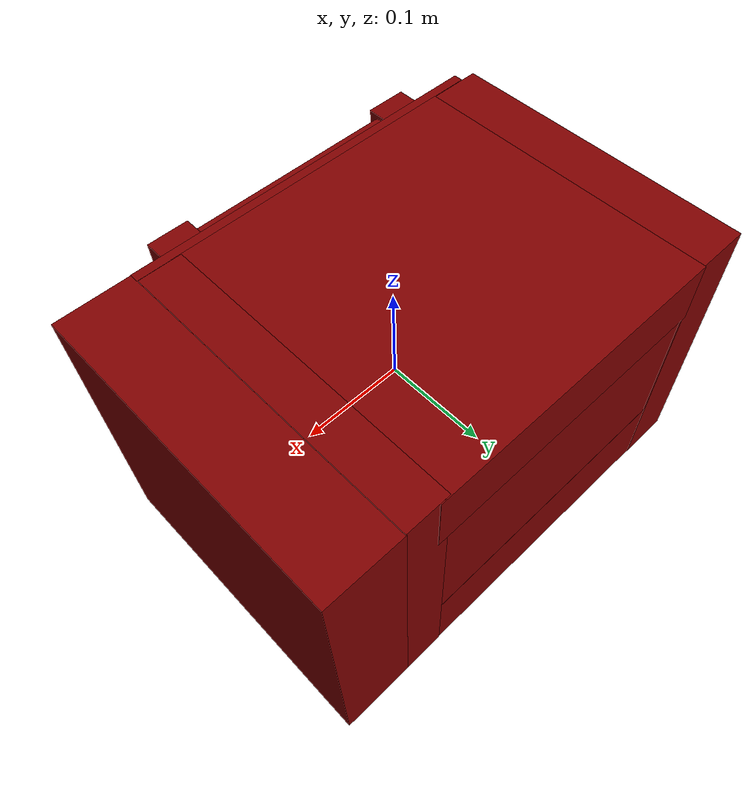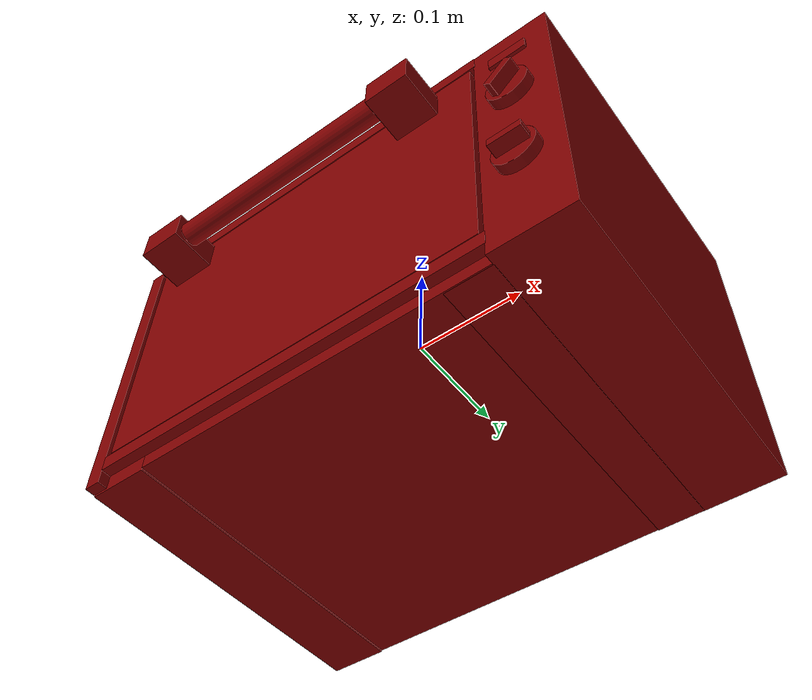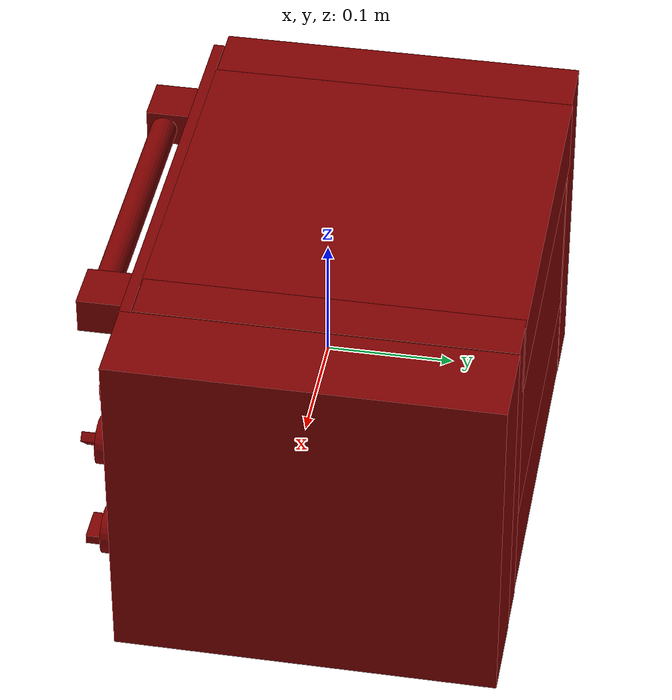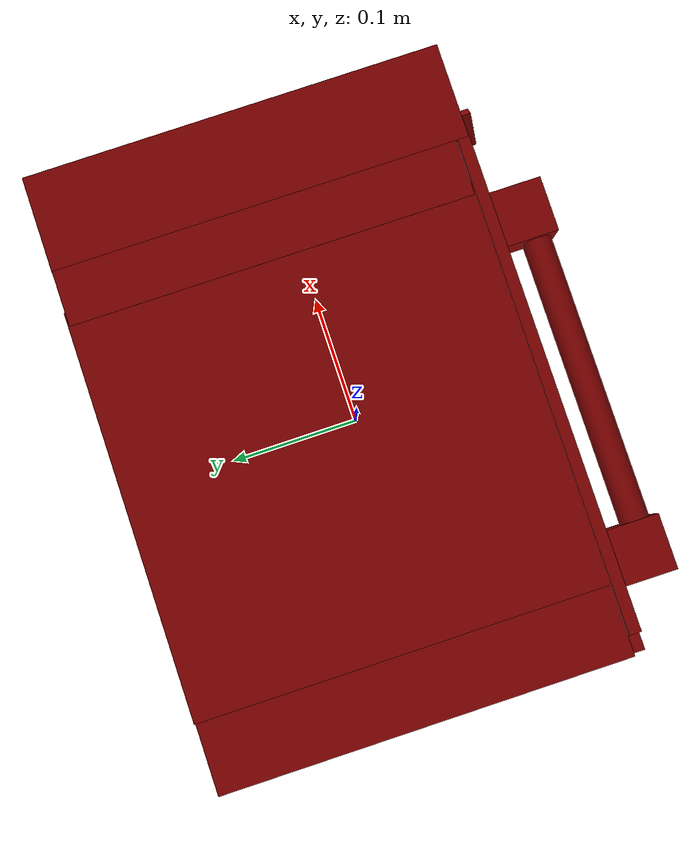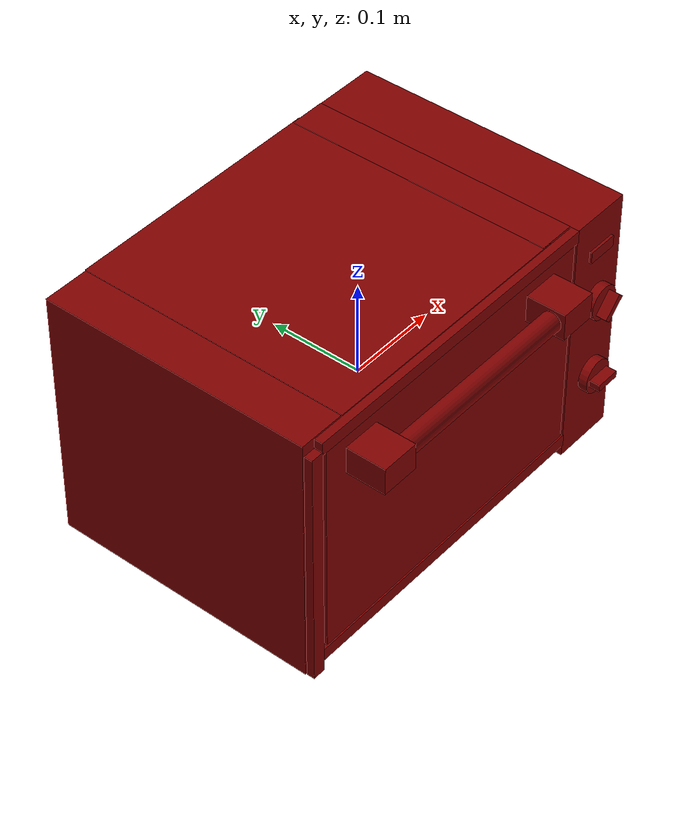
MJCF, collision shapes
<?xml version='1.0' encoding='UTF-8'?>
<mujoco model="model">
  <compiler angle="radian"/>
  <asset>
    <mesh file="visuals/Body001.obj" name="Body001_vis"/>
    <mesh file="visuals/Button001.obj" name="Button001_vis"/>
    <mesh file="visuals/Container001.obj" name="Container001_vis"/>
    <mesh file="visuals/Door001.obj" name="Door001_vis"/>
    <mesh file="visuals/Door001_Clear.obj" name="Door001_Clear_vis"/>
    <mesh file="visuals/Knob001.obj" name="Knob001_vis"/>
    <mesh file="visuals/Knob002.obj" name="Knob002_vis"/>
    <texture file="visuals/T_BC001.png" name="Body001_material" type="2d"/>
    <material name="Body001_material" rgba="1 1 1 1.0" texture="Body001_material" shininess="0.4472135901451111" specular="0.7"/>
    <texture file="visuals/T_BC001.png" name="Button001_material" type="2d"/>
    <material name="Button001_material" rgba="1 1 1 1.0" texture="Button001_material" shininess="0.4472135901451111" specular="0.3103448502657381"/>
    <texture file="visuals/T_BC001.png" name="Container001_material" type="2d"/>
    <material name="Container001_material" rgba="1 1 1 1.0" texture="Container001_material" shininess="0.4472135901451111" specular="0.3103448502657381"/>
    <texture file="visuals/T_BC001.png" name="Door001_material" type="2d"/>
    <material name="Door001_material" rgba="1 1 1 1.0" texture="Door001_material" shininess="0.4472135901451111" specular="0.7"/>
    <texture file="visuals/T_BC001.png" name="Door001_Clear_material" type="2d"/>
    <material name="Door001_Clear_material" rgba="1 1 1 0.800000011920929" texture="Door001_Clear_material" shininess="0.5" specular="0.3103448502657381"/>
    <texture file="visuals/T_BC001.png" name="Knob001_material" type="2d"/>
    <material name="Knob001_material" rgba="1 1 1 1.0" texture="Knob001_material" shininess="0.4472135901451111" specular="0.3103448502657381"/>
    <texture file="visuals/T_BC001.png" name="Knob002_material" type="2d"/>
    <material name="Knob002_material" rgba="1 1 1 1.0" texture="Knob002_material" shininess="0.4472135901451111" specular="0.3103448502657381"/>
  </asset>
  <default>
    <default class="visual">
      <geom conaffinity="0" contype="0" group="1" type="mesh"/>
    </default>
    <default class="collision">
      <geom group="0" rgba="0.5 0 0 0.5"/>
    </default>
    <default class="spawn">
      <geom group="0" rgba="1 1 1 0.5" contype="0" conaffinity="0"/>
      <site group="0" rgba="1 1 1 0.5"/>
    </default>
    <default class="region">
      <geom group="1" conaffinity="0" contype="0" rgba="0 1 0 0"/>
    </default>
  </default>
  <worldbody>
    <body>
      <body name="object">
        <geom mesh="Body001_vis" type="mesh" solimp="0.998 0.998 0.001" solref="0.001 1" density="100" friction="0.95 0.3 0.1" class="visual" material="Body001_material"/>
        <geom class="collision" type="box" pos="-0.1932327300310135 0.023562701418995857 -0.0002324962115380913" size="0.025627490133047104 0.14489032328128815 0.13805247843265533" quat="1.0 0.0 0.0 0.0"/>
        <geom class="collision" type="box" pos="0.18368476629257202 0.019207939505577087 -0.00012853697990067303" size="0.03454463183879852 0.1497284322977066 0.13750699162483215" quat="1.0 0.0 0.0 0.0"/>
        <geom class="collision" type="box" pos="-0.02491343580186367 0.023717664182186127 0.10771629959344864" size="0.14444921910762787 0.14566195011138916 0.03040163591504097" quat="1.0 0.0 0.0 0.0"/>
        <geom class="collision" type="box" pos="0.0003365774464327842 0.023008903488516808 -0.0987321212887764" size="0.1671508103609085 0.1451796144247055 0.03858915716409683" quat="1.0 0.0 0.0 0.0"/>
        <geom class="collision" type="box" pos="-0.007290201261639595 0.12078098952770233 0.026276038959622383" size="0.15798072516918182 0.047216691076755524 0.10450322926044464" quat="1.0 0.0 0.0 0.0"/>
        <geom class="collision" type="box" pos="0.12975217401981354 0.02365814335644245 0.0002771170693449676" size="0.019920168444514275 0.14489124715328217 0.13800044357776642" quat="1.0 0.0 0.0 0.0"/>
        <geom class="collision" type="box" pos="-0.21137258410453796 -0.12661521136760712 -0.00518137589097023" size="0.006847952026873827 0.0043335664086043835 0.13252614438533783" quat="1.0 0.0 0.0 0.0"/>
        <geom class="collision" type="box" pos="-0.027426209300756454 -0.1266152262687683 0.13058575987815857" size="0.17745929956436157 0.004333584103733301 0.006848010700196028" quat="1.0 0.0 0.0 0.0"/>
        <geom class="collision" type="box" pos="-0.027426209300756454 -0.1266152262687683 -0.1185009628534317" size="0.17745956778526306 0.004333584103733301 0.006848015822470188" quat="1.0 0.0 0.0 0.0"/>
        <geom class="collision" type="box" pos="-0.1652856320142746 -0.029180819168686867 0.02524438686668873" size="0.0031693163327872753 0.08165861666202545 0.0036857156082987785" quat="1.0 0.0 0.0 0.0"/>
        <geom class="collision" type="box" pos="-0.1652856320142746 -0.029180819168686867 -0.0014495676150545478" size="0.0031693163327872753 0.08165861666202545 0.0024835134390741587" quat="1.0 0.0 0.0 0.0"/>
        <geom class="collision" type="box" pos="-0.1652856320142746 -0.029180819168686867 -0.03261305391788483" size="0.0031693163327872753 0.08165861666202545 0.003685720730572939" quat="1.0 0.0 0.0 0.0"/>
        <geom class="collision" type="box" pos="0.10883291065692902 -0.029180819168686867 0.02524438686668873" size="0.0031693163327872753 0.08165861666202545 0.0036857235245406628" quat="1.0 0.0 0.0 0.0"/>
        <geom class="collision" type="box" pos="0.10883291065692902 -0.029180819168686867 -0.0019221227848902345" size="0.0031693163327872753 0.08165861666202545 0.002483517164364457" quat="1.0 0.0 0.0 0.0"/>
        <geom class="collision" type="box" pos="0.10883291065692902 -0.029180819168686867 -0.03261305391788483" size="0.0031693163327872753 0.08165861666202545 0.003685728646814823" quat="1.0 0.0 0.0 0.0"/>
        <body name="Button001">
          <joint axis="0.0 1.0 0.0" pos="0.18294595181941986 -0.13352136313915253 0.09825830161571503" limited="true" name="Button001_joint" range="0.0 0.003" type="slide" damping="1" frictionloss="1" armature=".01" stiffness="0.05"/>
          <geom mesh="Button001_vis" type="mesh" solimp="0.998 0.998 0.001" solref="0.001 1" density="100" friction="0.95 0.3 0.1" class="visual" material="Button001_material"/>
          <geom class="collision" type="box" pos="0.18284517526626587 -0.13477708399295807 0.09826550632715225" size="0.016775285825133324 0.0013419415336102247 0.006294476334005594" quat="1.0 0.0 0.0 0.0"/>
        </body>
        <body name="Container001">
          <joint axis="0.0 -1.0 0.0" pos="-0.028300438076257706 -0.029593314975500107 0.007739551365375519" limited="true" name="Container001_joint" range="0.0 0.3" type="slide" damping="1" frictionloss="1" armature=".01" stiffness="0.05"/>
          <geom mesh="Container001_vis" type="mesh" solimp="0.998 0.998 0.001" solref="0.001 1" density="100" friction="0.95 0.3 0.1" class="visual" material="Container001_material"/>
          <geom class="collision" type="box" pos="-0.029132431373000145 -0.02918081544339657 0.005697024520486593" size="0.13742515444755554 0.08027005195617676 0.003454453544691205" quat="1.0 0.0 0.0 0.0"/>
        </body>
        <body name="Door001">
          <joint axis="1.0 0.0 0.0" pos="-0.028417732566595078 -0.13098841905593872 -0.10996166616678238" limited="true" name="Door001_joint" range="0.0 1.5707963267948966" type="hinge" damping="1" frictionloss="1" armature=".01" stiffness="0.5" springref="-1"/>
          <geom mesh="Door001_vis" type="mesh" solimp="0.998 0.998 0.001" solref="0.001 1" density="100" friction="0.95 0.3 0.1" class="visual" material="Door001_material"/>
          <geom class="collision" type="box" pos="-0.027483291923999786 -0.12640777230262756 0.006602500565350056" size="0.17245088517665863 0.0040414961986243725 0.11639589071273804" quat="1.0 0.0 0.0 0.0"/>
          <geom class="collision" type="box" pos="-0.1559285819530487 -0.15252259373664856 0.09821559488773346" size="0.020086579024791718 0.0209808386862278 0.014291373081505299" quat="1.0 0.0 0.0 0.0"/>
          <geom class="collision" type="box" pos="0.09332048892974854 -0.15252259373664856 0.09821559488773346" size="0.020086579024791718 0.020980851724743843 0.014291389845311642" quat="1.0 0.0 0.0 0.0"/>
          <geom class="collision" type="cylinder" pos="-0.02982192300260067 -0.1590261459350586 0.09833655506372452" size="0.010604559443891048 0.10777267813682556" quat="0.7071068286895752 -0.0 0.7071067690849304 0.0"/>
          <body name="Door001_Clear">
            <geom mesh="Door001_Clear_vis" type="mesh" solimp="0.998 0.998 0.001" solref="0.001 1" density="100" friction="0.95 0.3 0.1" class="visual" material="Door001_Clear_material"/>
            <geom class="collision" type="box" pos="-0.027810823172330856 -0.12754644453525543 0.008148572407662868" size="0.14387357234954834 0.0022440655156970024 0.07341540604829788" quat="1.0 0.0 0.0 0.0"/>
          </body>
        </body>
        <body name="Knob001">
          <joint axis="0.0 1.0 0.0" pos="0.18314242362976074 -0.13682837784290314 0.038146428763866425" limited="true" name="Knob001_joint" range="0.0 5.497787143782138" type="hinge" damping="0.05" armature="0.001"/>
          <geom mesh="Knob001_vis" type="mesh" solimp="0.998 0.998 0.001" solref="0.001 1" density="100" friction="0.95 0.3 0.1" class="visual" material="Knob001_material"/>
          <geom class="collision" type="cylinder" pos="0.18312975764274597 -0.13768555223941803 0.03828324005007744" size="0.018340058624744415 0.004675981123000383" quat="0.7071067094802856 0.70710688829422 0.0 0.0"/>
          <geom class="collision" type="box" pos="0.1831539422273636 -0.14699885249137878 0.03798419609665871" size="0.013689884915947914 0.006979962810873985 0.003742998233065009" quat="0.9220510125160217 -9.487234030336206e-15 -0.38706842064857483 -5.200607233746268e-08"/>
        </body>
        <body name="Knob002">
          <joint axis="0.0 1.0 0.0" pos="0.18314239382743835 -0.13682837784290314 -0.052383847534656525" limited="true" name="Knob002_joint" range="0.0 5.323254218582705" type="hinge" damping="0.05" armature="0.001"/>
          <geom mesh="Knob002_vis" type="mesh" solimp="0.998 0.998 0.001" solref="0.001 1" density="100" friction="0.95 0.3 0.1" class="visual" material="Knob002_material"/>
          <geom class="collision" type="cylinder" pos="0.1832025796175003 -0.13755644857883453 -0.05271351709961891" size="0.018340058624744415 0.004675981123000383" quat="0.7071067094802856 0.70710688829422 0.0 0.0"/>
          <geom class="collision" type="box" pos="0.18332508206367493 -0.14699885249137878 -0.05282038077712059" size="0.013689885847270489 0.006979962810873985 0.003742998233065009" quat="1.0 0.0 0.0 0.0"/>
        </body>
        <geom class="region" name="reg_main" type="box" pos="3.725290298461914e-09 0.018280506134033203 0.0" size="0.21935908496379852 0.1511610746383667 0.1385619342327118"/>
        <geom class="region" name="reg_int" type="box" pos="-0.02901335433125496 -0.02092326059937477 0.006932390853762627" size="0.14018797501921654 0.09528498724102974 0.06927564181387424"/>
      </body>
    </body>
  </worldbody>
  <actuator>
    <motor name="Button001_joint_actuator" joint="Button001_joint" gear="0.5"/>
    <motor name="Container001_joint_actuator" joint="Container001_joint" gear="10"/>
    <motor name="Door001_joint_actuator" joint="Door001_joint" gear="50"/>
    <motor name="Knob001_joint_actuator" joint="Knob001_joint" gear="50"/>
    <motor name="Knob002_joint_actuator" joint="Knob002_joint" gear="50"/>
  </actuator>
</mujoco>
